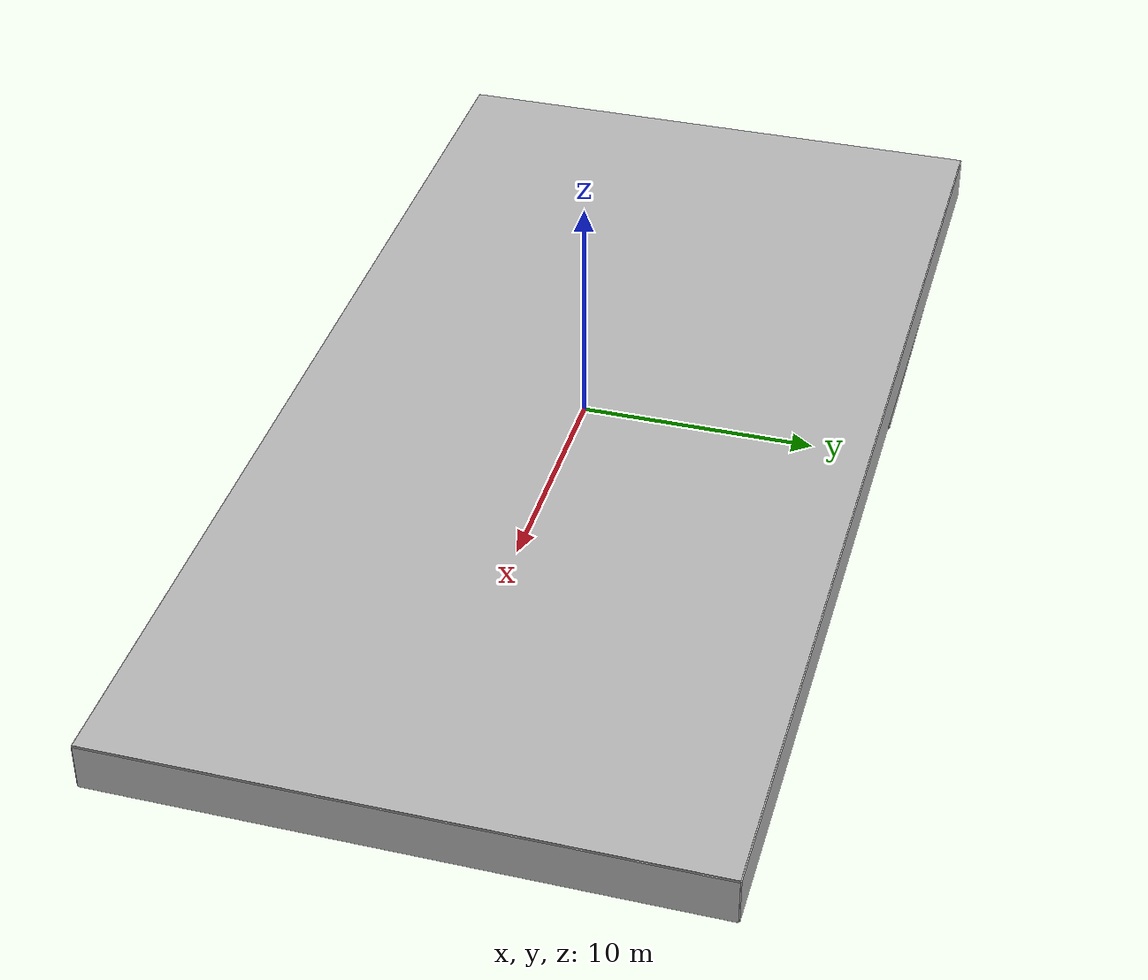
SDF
<?xml version="1.0"?>

<sdf version="1.5">
  <model name="swimming_pool">
    <static>true</static>
    <link name="link">

      <visual name="ground1">
        <cast_shadows>false</cast_shadows>
        <pose>-24.1 -0 -1.64 0 0 0</pose>
        <geometry>
          <box>
            <size>1.8 25 .72</size>
          </box>
        </geometry>
        <material>
          <script>
            <uri>file://media/materials/scripts/ground_1.material</uri>
            <name>SAUVC2019/FloorTiles1</name>
          </script>
        </material>
      </visual>

      <collision name="ground1">
        <pose>-24.1 -0 -1.64 0 0 0</pose>
        <geometry>
          <box>
            <size>1.8 25 .72</size>
          </box>
        </geometry>
      </collision>

      <visual name="ground2">
        <cast_shadows>false</cast_shadows>
        <pose>-14.465 0 -1.9997  0 0.041119666044899805 0</pose>
        <geometry>
          <box>
            <size>17.514805165916062 25 .72</size>
          </box>
        </geometry>
        <material>
          <script>
            <uri>file://media/materials/scripts/ground_2.material</uri>
            <name>SAUVC2019/FloorTiles2</name>
          </script>
        </material>
      </visual>

      <collision name="ground2">
        <pose>-14.465 0 -1.9997  0 0.041119666044899805 0</pose>
        <geometry>
          <box>
            <size>17.514805165916062 25 .72</size>
          </box>
        </geometry>
      </collision>

      <visual name="ground3">
        <cast_shadows>false</cast_shadows>
        <pose>9.65 0 -2.01 0 0 0</pose>
        <geometry>
          <box>
            <size>30.7 25 0.005</size>
          </box>
        </geometry>
        <material>
          <script>
            <uri>file://media/materials/scripts/ground_3.material</uri>
            <name>SAUVC2019/FloorTiles3</name>
          </script>
        </material>
      </visual>

      <collision name="ground3">
        <pose>9.65 0 -2.01 0 0 0</pose>
        <geometry>
          <box>
            <size>30.7 25 0.005</size>
          </box>
        </geometry>
      </collision>

      <visual name="surface">
        <cast_shadows>false</cast_shadows>
        <pose>0 0 0 0 0 0</pose>
        <geometry>
          <box>
            <size>50 25 .1</size>
          </box>
        </geometry>
        <material>
          <script>
            <uri>file://media/materials/scripts/water.material</uri>
            <name>SAUVC2019/StaticWater</name>
          </script>
        </material>
      </visual>

      <visual name="north">
        <cast_shadows>false</cast_shadows>
        <pose>25 0 -1 0 0 0</pose>
        <geometry>
          <box>
            <size>.1 25 2</size>
          </box>
        </geometry>
        <material>
          <script>
            <uri>file://media/materials/scripts/short_wall_tiles.material</uri>
            <name>SAUVC2019/ShortWallTiles</name>
          </script>
        </material>
      </visual>

      <visual name="south">
        <cast_shadows>false</cast_shadows>
        <pose>-25 0 -1 0 0 0</pose>
        <geometry>
          <box>
            <size>.1 25 2</size>
          </box>
        </geometry>
        <material>
          <script>
            <uri>file://media/materials/scripts/short_wall_tiles.material</uri>
            <name>SAUVC2019/ShortWallTiles</name>
          </script>
        </material>
      </visual>

      <visual name="east">
        <cast_shadows>false</cast_shadows>
        <pose>0 -12.5 -1 0 0 0</pose>
        <geometry>
          <box>
            <size>50 .1 2</size>
          </box>
        </geometry>
        <material>
          <script>
            <uri>file://media/materials/scripts/long_wall_tiles.material</uri>
            <name>SAUVC2019/LongWallTiles</name>
          </script>
        </material>
      </visual>

      <visual name="west">
        <cast_shadows>false</cast_shadows>
        <pose>0 12.5 -1 0 0 0</pose>
        <geometry>
          <box>
            <size>50 .1 2</size>
          </box>
        </geometry>
        <material>
          <script>
            <uri>file://media/materials/scripts/long_wall_tiles.material</uri>
            <name>SAUVC2019/LongWallTiles</name>
          </script>
        </material>
      </visual>
    </link>
  </model>
</sdf>
